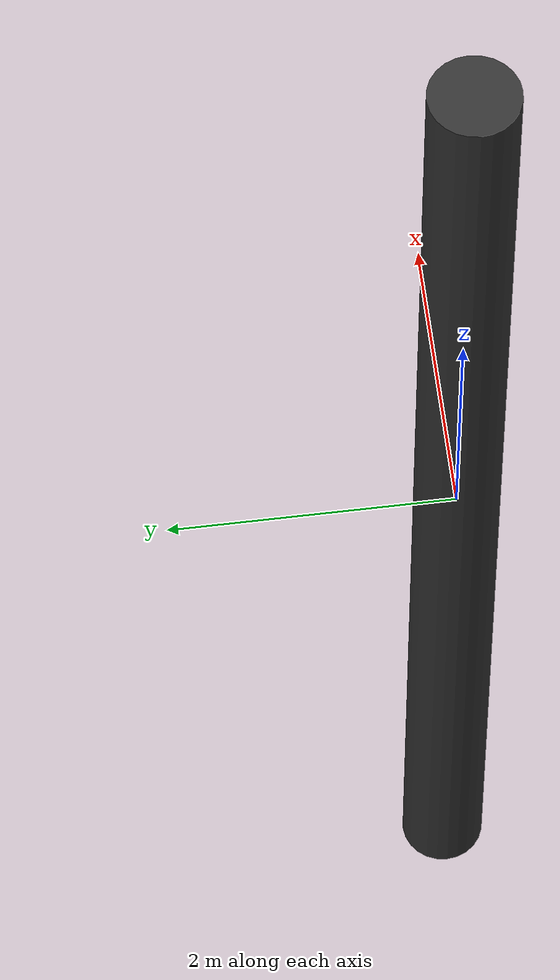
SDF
<?xml version="1.0" ?>
<sdf version="1.6">
  <model name="obstacle">
    <static>true</static>
    <link name="link">
      <collision name="collision">
        <geometry>
          <cylinder>
            <radius>0.3</radius>
            <length>10.0</length>
          </cylinder>
        </geometry>
      </collision>
      <visual name="visual">
        <geometry>
          <cylinder>
            <radius>0.3</radius>
            <length>10.0</length>
          </cylinder>
        </geometry>
        <material>
          <ambient>0.2 0.2 0.2 1</ambient>
          <diffuse>0.2 0.2 0.2 1</diffuse>
        </material>
      </visual>
    </link>
  </model>
</sdf>
